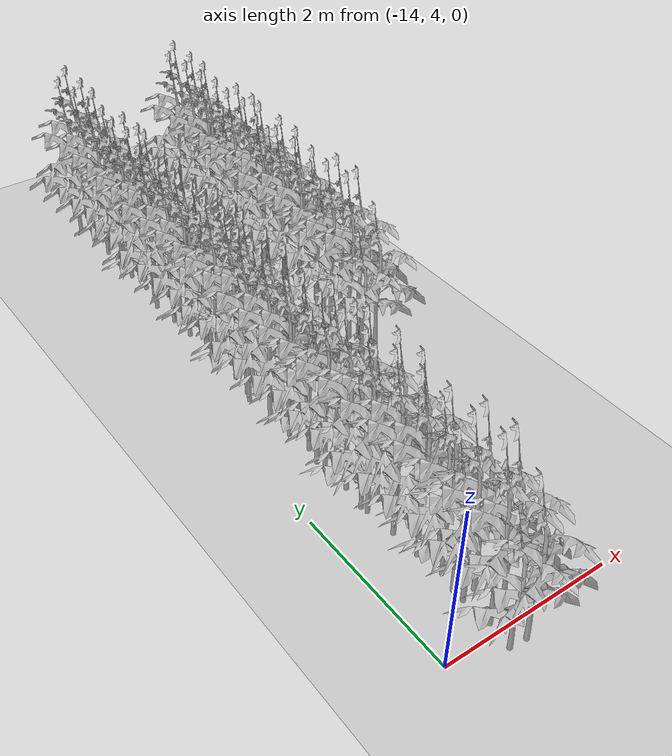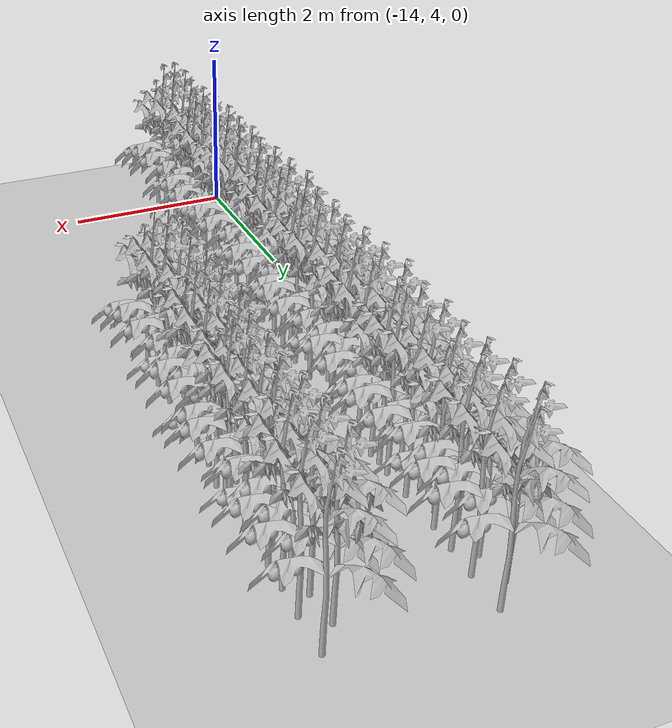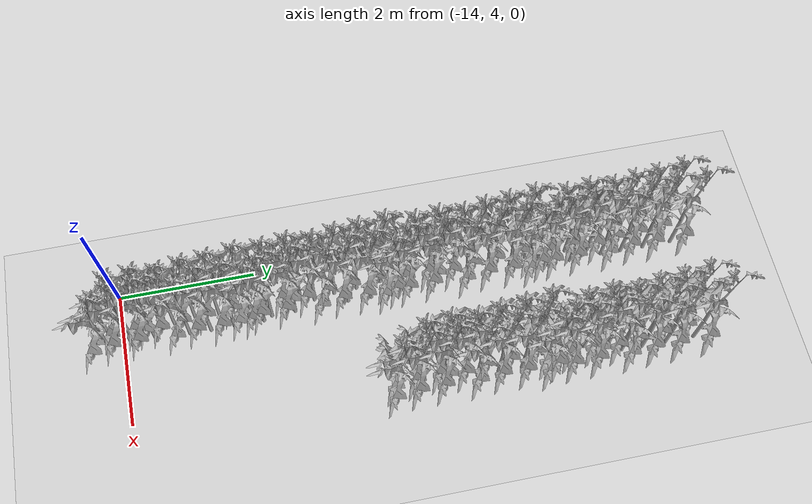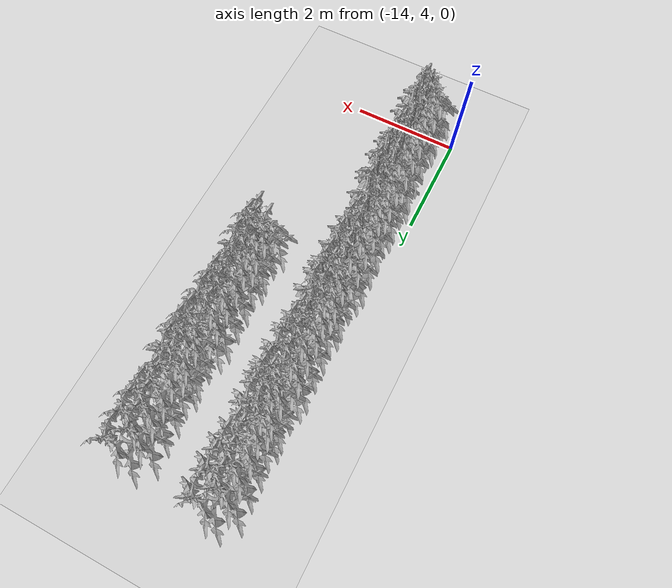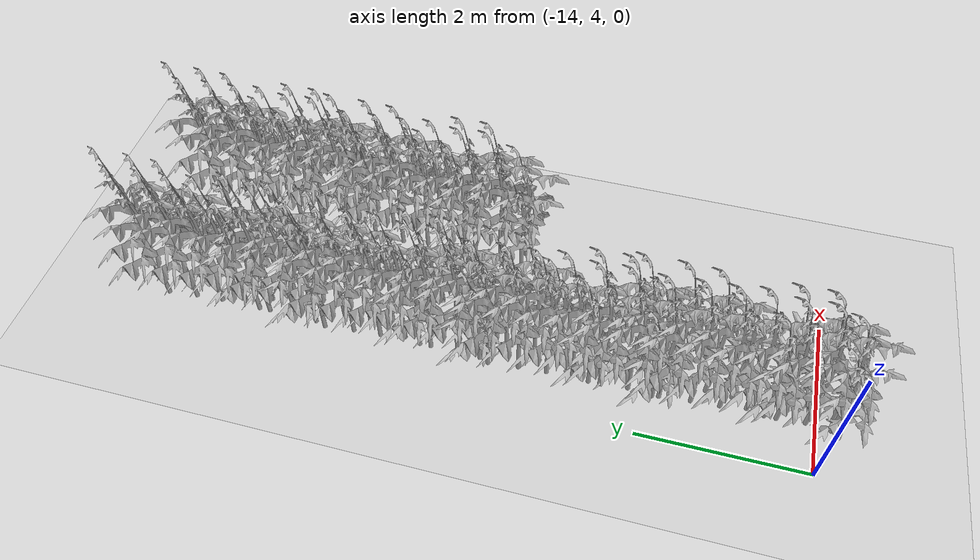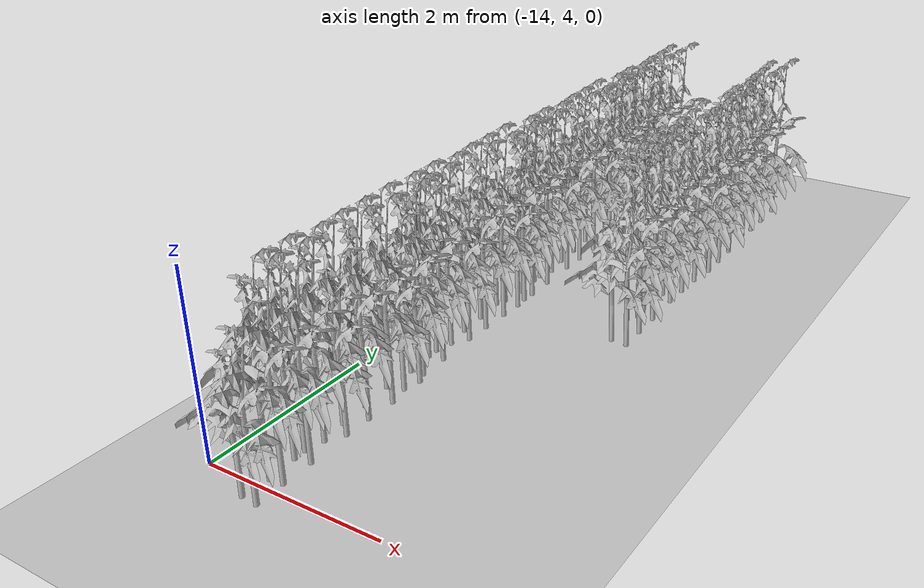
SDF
<sdf version="1.6">
 <world name="default">
  <model name="ground_plane">
   <static>1</static>
   <link name="link">
    <collision name="collision">
     <geometry><plane><normal>0 0 1</normal><size>100 100</size></plane></geometry>
     <surface>
      <contact><collide_bitmask>65535</collide_bitmask></contact>
      <friction><ode><mu>100</mu><mu2>50</mu2></ode></friction>
     </surface>
    </collision>
    <visual name="visual">
     <cast_shadows>0</cast_shadows>
     <geometry><plane><normal>0 0 1</normal><size>100 100</size></plane></geometry>
     <material>
      <script><uri>file://media/materials/scripts/gazebo.material</uri><name>Gazebo/Grey</name></script>
     </material>
    </visual>
   </link>
  </model>
  <model name="Middle_Plant_35">
   <model name="tomato_plant_big">
    <static>1</static>
    <link name="link">
     <collision name="collision">
      <geometry>
       <mesh><scale>5e-06 5e-06 6e-06</scale><uri>model://tomato_plant_big/meshes/tomato-plant.dae</uri></mesh>
      </geometry>
     </collision>
     <visual name="visual">
      <geometry>
       <mesh><scale>5e-06 5e-06 7e-06</scale><uri>model://tomato_plant_big/meshes/tomato-plant.dae</uri></mesh>
      </geometry>
     </visual>
    </link>
    <pose>0.085326 1.23023 0 0 -0 0</pose>
   </model>
   <model name="tomato_plant_big_0">
    <static>1</static>
    <link name="link">
     <collision name="collision">
      <geometry>
       <mesh><scale>5e-06 5e-06 6e-06</scale><uri>model://tomato_plant_big/meshes/tomato-plant.dae</uri></mesh>
      </geometry>
     </collision>
     <visual name="visual">
      <geometry>
       <mesh><scale>5e-06 5e-06 7e-06</scale><uri>model://tomato_plant_big/meshes/tomato-plant.dae</uri></mesh>
      </geometry>
     </visual>
    </link>
    <pose>-0.133881 0.970183 0 0 -0 0</pose>
   </model>
   <model name="tomato_plant_big_1">
    <static>1</static>
    <link name="link">
     <collision name="collision">
      <geometry>
       <mesh><scale>5e-06 5e-06 6e-06</scale><uri>model://tomato_plant_big/meshes/tomato-plant.dae</uri></mesh>
      </geometry>
     </collision>
     <visual name="visual">
      <geometry>
       <mesh><scale>5e-06 5e-06 7e-06</scale><uri>model://tomato_plant_big/meshes/tomato-plant.dae</uri></mesh>
      </geometry>
     </visual>
    </link>
    <pose>0.091162 0.792381 0 0 -0 0</pose>
   </model>
   <model name="tomato_plant_big_2">
    <static>1</static>
    <link name="link">
     <collision name="collision">
      <geometry>
       <mesh><scale>5e-06 5e-06 6e-06</scale><uri>model://tomato_plant_big/meshes/tomato-plant.dae</uri></mesh>
      </geometry>
     </collision>
     <visual name="visual">
      <geometry>
       <mesh><scale>5e-06 5e-06 7e-06</scale><uri>model://tomato_plant_big/meshes/tomato-plant.dae</uri></mesh>
      </geometry>
     </visual>
    </link>
    <pose>-0.099228 0.602587 0 0 -0 0</pose>
   </model>
   <model name="tomato_plant_big_3">
    <static>1</static>
    <link name="link">
     <collision name="collision">
      <geometry>
       <mesh><scale>5e-06 5e-06 6e-06</scale><uri>model://tomato_plant_big/meshes/tomato-plant.dae</uri></mesh>
      </geometry>
     </collision>
     <visual name="visual">
      <geometry>
       <mesh><scale>5e-06 5e-06 7e-06</scale><uri>model://tomato_plant_big/meshes/tomato-plant.dae</uri></mesh>
      </geometry>
     </visual>
    </link>
    <pose>0.083199 0.447645 0 0 -0 0</pose>
   </model>
   <model name="tomato_plant_big_4">
    <static>1</static>
    <link name="link">
     <collision name="collision">
      <geometry>
       <mesh><scale>5e-06 5e-06 6e-06</scale><uri>model://tomato_plant_big/meshes/tomato-plant.dae</uri></mesh>
      </geometry>
     </collision>
     <visual name="visual">
      <geometry>
       <mesh><scale>5e-06 5e-06 7e-06</scale><uri>model://tomato_plant_big/meshes/tomato-plant.dae</uri></mesh>
      </geometry>
     </visual>
    </link>
    <pose>-0.079499 0.263486 0 0 -0 0</pose>
   </model>
   <model name="tomato_plant_big_5">
    <static>1</static>
    <link name="link">
     <collision name="collision">
      <geometry>
       <mesh><scale>5e-06 5e-06 6e-06</scale><uri>model://tomato_plant_big/meshes/tomato-plant.dae</uri></mesh>
      </geometry>
     </collision>
     <visual name="visual">
      <geometry>
       <mesh><scale>5e-06 5e-06 7e-06</scale><uri>model://tomato_plant_big/meshes/tomato-plant.dae</uri></mesh>
      </geometry>
     </visual>
    </link>
    <pose>-0.033274 -0.040578 0 0 -0 0</pose>
   </model>
   <model name="tomato_plant_big_6">
    <static>1</static>
    <link name="link">
     <collision name="collision">
      <geometry>
       <mesh><scale>5e-06 5e-06 6e-06</scale><uri>model://tomato_plant_big/meshes/tomato-plant.dae</uri></mesh>
      </geometry>
     </collision>
     <visual name="visual">
      <geometry>
       <mesh><scale>5e-06 5e-06 7e-06</scale><uri>model://tomato_plant_big/meshes/tomato-plant.dae</uri></mesh>
      </geometry>
     </visual>
    </link>
    <pose>-0.07669 -0.382406 0 0 -0 0</pose>
   </model>
   <model name="tomato_plant_big_7">
    <static>1</static>
    <link name="link">
     <collision name="collision">
      <geometry>
       <mesh><scale>5e-06 5e-06 6e-06</scale><uri>model://tomato_plant_big/meshes/tomato-plant.dae</uri></mesh>
      </geometry>
     </collision>
     <visual name="visual">
      <geometry>
       <mesh><scale>5e-06 5e-06 7e-06</scale><uri>model://tomato_plant_big/meshes/tomato-plant.dae</uri></mesh>
      </geometry>
     </visual>
    </link>
    <pose>0.092388 -0.348189 0 0 -0 0</pose>
   </model>
   <model name="tomato_plant_big_8">
    <static>1</static>
    <link name="link">
     <collision name="collision">
      <geometry>
       <mesh><scale>5e-06 5e-06 6e-06</scale><uri>model://tomato_plant_big/meshes/tomato-plant.dae</uri></mesh>
      </geometry>
     </collision>
     <visual name="visual">
      <geometry>
       <mesh><scale>5e-06 5e-06 7e-06</scale><uri>model://tomato_plant_big/meshes/tomato-plant.dae</uri></mesh>
      </geometry>
     </visual>
    </link>
    <pose>0.099522 -0.697525 0 0 -0 0</pose>
   </model>
   <model name="tomato_plant_big_9">
    <static>1</static>
    <link name="link">
     <collision name="collision">
      <geometry>
       <mesh><scale>5e-06 5e-06 6e-06</scale><uri>model://tomato_plant_big/meshes/tomato-plant.dae</uri></mesh>
      </geometry>
     </collision>
     <visual name="visual">
      <geometry>
       <mesh><scale>5e-06 5e-06 7e-06</scale><uri>model://tomato_plant_big/meshes/tomato-plant.dae</uri></mesh>
      </geometry>
     </visual>
    </link>
    <pose>-0.050449 -0.712772 0 0 -0 0</pose>
   </model>
   <model name="tomato_plant_medium">
    <static>1</static>
    <link name="link">
     <collision name="collision">
      <geometry>
       <mesh><scale>5e-06 5e-06 6e-06</scale><uri>model://tomato_plant_medium/meshes/tomato-plant.dae</uri></mesh>
      </geometry>
     </collision>
     <visual name="visual">
      <geometry>
       <mesh><scale>5e-06 5e-06 6e-06</scale><uri>model://tomato_plant_medium/meshes/tomato-plant.dae</uri></mesh>
      </geometry>
     </visual>
    </link>
    <pose>0.078434 0.139842 0 0 -0 0</pose>
   </model>
   <model name="tomato_plant_medium_0">
    <static>1</static>
    <link name="link">
     <collision name="collision">
      <geometry>
       <mesh><scale>5e-06 5e-06 6e-06</scale><uri>model://tomato_plant_medium/meshes/tomato-plant.dae</uri></mesh>
      </geometry>
     </collision>
     <visual name="visual">
      <geometry>
       <mesh><scale>5e-06 5e-06 6e-06</scale><uri>model://tomato_plant_medium/meshes/tomato-plant.dae</uri></mesh>
      </geometry>
     </visual>
    </link>
    <pose>-0.079755 -0.244483 0 0 -0 0</pose>
   </model>
   <model name="tomato_plant_medium_1">
    <static>1</static>
    <link name="link">
     <collision name="collision">
      <geometry>
       <mesh><scale>5e-06 5e-06 6e-06</scale><uri>model://tomato_plant_medium/meshes/tomato-plant.dae</uri></mesh>
      </geometry>
     </collision>
     <visual name="visual">
      <geometry>
       <mesh><scale>5e-06 5e-06 6e-06</scale><uri>model://tomato_plant_medium/meshes/tomato-plant.dae</uri></mesh>
      </geometry>
     </visual>
    </link>
    <pose>0.106744 -1.01815 0 0 -0 0</pose>
   </model>
   <model name="tomato_plant_small">
    <static>1</static>
    <link name="link">
     <collision name="collision">
      <geometry>
       <mesh><scale>5e-06 5e-06 5e-06</scale><uri>model://tomato_plant_small/meshes/tomato-plant.dae</uri></mesh>
      </geometry>
     </collision>
     <visual name="visual">
      <geometry>
       <mesh><scale>5e-06 5e-06 5e-06</scale><uri>model://tomato_plant_small/meshes/tomato-plant.dae</uri></mesh>
      </geometry>
     </visual>
    </link>
    <pose>-0.083979 -1.00222 0 0 -0 0</pose>
   </model>
   <static>0</static>
   <pose>-13.303 4.80498 0 0 -0 0</pose>
  </model>
  <model name="Middle_Plant_39">
   <model name="tomato_plant_big">
    <static>1</static>
    <link name="link">
     <collision name="collision">
      <geometry>
       <mesh><scale>5e-06 5e-06 6e-06</scale><uri>model://tomato_plant_big/meshes/tomato-plant.dae</uri></mesh>
      </geometry>
     </collision>
     <visual name="visual">
      <geometry>
       <mesh><scale>5e-06 5e-06 7e-06</scale><uri>model://tomato_plant_big/meshes/tomato-plant.dae</uri></mesh>
      </geometry>
     </visual>
    </link>
    <pose>0.085326 1.23023 0 0 -0 0</pose>
   </model>
   <model name="tomato_plant_big_0">
    <static>1</static>
    <link name="link">
     <collision name="collision">
      <geometry>
       <mesh><scale>5e-06 5e-06 6e-06</scale><uri>model://tomato_plant_big/meshes/tomato-plant.dae</uri></mesh>
      </geometry>
     </collision>
     <visual name="visual">
      <geometry>
       <mesh><scale>5e-06 5e-06 7e-06</scale><uri>model://tomato_plant_big/meshes/tomato-plant.dae</uri></mesh>
      </geometry>
     </visual>
    </link>
    <pose>-0.133881 0.970183 0 0 -0 0</pose>
   </model>
   <model name="tomato_plant_big_1">
    <static>1</static>
    <link name="link">
     <collision name="collision">
      <geometry>
       <mesh><scale>5e-06 5e-06 6e-06</scale><uri>model://tomato_plant_big/meshes/tomato-plant.dae</uri></mesh>
      </geometry>
     </collision>
     <visual name="visual">
      <geometry>
       <mesh><scale>5e-06 5e-06 7e-06</scale><uri>model://tomato_plant_big/meshes/tomato-plant.dae</uri></mesh>
      </geometry>
     </visual>
    </link>
    <pose>0.091162 0.792381 0 0 -0 0</pose>
   </model>
   <model name="tomato_plant_big_2">
    <static>1</static>
    <link name="link">
     <collision name="collision">
      <geometry>
       <mesh><scale>5e-06 5e-06 6e-06</scale><uri>model://tomato_plant_big/meshes/tomato-plant.dae</uri></mesh>
      </geometry>
     </collision>
     <visual name="visual">
      <geometry>
       <mesh><scale>5e-06 5e-06 7e-06</scale><uri>model://tomato_plant_big/meshes/tomato-plant.dae</uri></mesh>
      </geometry>
     </visual>
    </link>
    <pose>-0.099228 0.602587 0 0 -0 0</pose>
   </model>
   <model name="tomato_plant_big_3">
    <static>1</static>
    <link name="link">
     <collision name="collision">
      <geometry>
       <mesh><scale>5e-06 5e-06 6e-06</scale><uri>model://tomato_plant_big/meshes/tomato-plant.dae</uri></mesh>
      </geometry>
     </collision>
     <visual name="visual">
      <geometry>
       <mesh><scale>5e-06 5e-06 7e-06</scale><uri>model://tomato_plant_big/meshes/tomato-plant.dae</uri></mesh>
      </geometry>
     </visual>
    </link>
    <pose>0.083199 0.447645 0 0 -0 0</pose>
   </model>
   <model name="tomato_plant_big_4">
    <static>1</static>
    <link name="link">
     <collision name="collision">
      <geometry>
       <mesh><scale>5e-06 5e-06 6e-06</scale><uri>model://tomato_plant_big/meshes/tomato-plant.dae</uri></mesh>
      </geometry>
     </collision>
     <visual name="visual">
      <geometry>
       <mesh><scale>5e-06 5e-06 7e-06</scale><uri>model://tomato_plant_big/meshes/tomato-plant.dae</uri></mesh>
      </geometry>
     </visual>
    </link>
    <pose>-0.079499 0.263486 0 0 -0 0</pose>
   </model>
   <model name="tomato_plant_big_5">
    <static>1</static>
    <link name="link">
     <collision name="collision">
      <geometry>
       <mesh><scale>5e-06 5e-06 6e-06</scale><uri>model://tomato_plant_big/meshes/tomato-plant.dae</uri></mesh>
      </geometry>
     </collision>
     <visual name="visual">
      <geometry>
       <mesh><scale>5e-06 5e-06 7e-06</scale><uri>model://tomato_plant_big/meshes/tomato-plant.dae</uri></mesh>
      </geometry>
     </visual>
    </link>
    <pose>-0.033274 -0.040578 0 0 -0 0</pose>
   </model>
   <model name="tomato_plant_big_6">
    <static>1</static>
    <link name="link">
     <collision name="collision">
      <geometry>
       <mesh><scale>5e-06 5e-06 6e-06</scale><uri>model://tomato_plant_big/meshes/tomato-plant.dae</uri></mesh>
      </geometry>
     </collision>
     <visual name="visual">
      <geometry>
       <mesh><scale>5e-06 5e-06 7e-06</scale><uri>model://tomato_plant_big/meshes/tomato-plant.dae</uri></mesh>
      </geometry>
     </visual>
    </link>
    <pose>-0.07669 -0.382406 0 0 -0 0</pose>
   </model>
   <model name="tomato_plant_big_7">
    <static>1</static>
    <link name="link">
     <collision name="collision">
      <geometry>
       <mesh><scale>5e-06 5e-06 6e-06</scale><uri>model://tomato_plant_big/meshes/tomato-plant.dae</uri></mesh>
      </geometry>
     </collision>
     <visual name="visual">
      <geometry>
       <mesh><scale>5e-06 5e-06 7e-06</scale><uri>model://tomato_plant_big/meshes/tomato-plant.dae</uri></mesh>
      </geometry>
     </visual>
    </link>
    <pose>0.092388 -0.348189 0 0 -0 0</pose>
   </model>
   <model name="tomato_plant_big_8">
    <static>1</static>
    <link name="link">
     <collision name="collision">
      <geometry>
       <mesh><scale>5e-06 5e-06 6e-06</scale><uri>model://tomato_plant_big/meshes/tomato-plant.dae</uri></mesh>
      </geometry>
     </collision>
     <visual name="visual">
      <geometry>
       <mesh><scale>5e-06 5e-06 7e-06</scale><uri>model://tomato_plant_big/meshes/tomato-plant.dae</uri></mesh>
      </geometry>
     </visual>
    </link>
    <pose>0.099522 -0.697525 0 0 -0 0</pose>
   </model>
   <model name="tomato_plant_big_9">
    <static>1</static>
    <link name="link">
     <collision name="collision">
      <geometry>
       <mesh><scale>5e-06 5e-06 6e-06</scale><uri>model://tomato_plant_big/meshes/tomato-plant.dae</uri></mesh>
      </geometry>
     </collision>
     <visual name="visual">
      <geometry>
       <mesh><scale>5e-06 5e-06 7e-06</scale><uri>model://tomato_plant_big/meshes/tomato-plant.dae</uri></mesh>
      </geometry>
     </visual>
    </link>
    <pose>-0.050449 -0.712772 0 0 -0 0</pose>
   </model>
   <model name="tomato_plant_medium">
    <static>1</static>
    <link name="link">
     <collision name="collision">
      <geometry>
       <mesh><scale>5e-06 5e-06 6e-06</scale><uri>model://tomato_plant_medium/meshes/tomato-plant.dae</uri></mesh>
      </geometry>
     </collision>
     <visual name="visual">
      <geometry>
       <mesh><scale>5e-06 5e-06 6e-06</scale><uri>model://tomato_plant_medium/meshes/tomato-plant.dae</uri></mesh>
      </geometry>
     </visual>
    </link>
    <pose>0.078434 0.139842 0 0 -0 0</pose>
   </model>
   <model name="tomato_plant_medium_0">
    <static>1</static>
    <link name="link">
     <collision name="collision">
      <geometry>
       <mesh><scale>5e-06 5e-06 6e-06</scale><uri>model://tomato_plant_medium/meshes/tomato-plant.dae</uri></mesh>
      </geometry>
     </collision>
     <visual name="visual">
      <geometry>
       <mesh><scale>5e-06 5e-06 6e-06</scale><uri>model://tomato_plant_medium/meshes/tomato-plant.dae</uri></mesh>
      </geometry>
     </visual>
    </link>
    <pose>-0.079755 -0.244483 0 0 -0 0</pose>
   </model>
   <model name="tomato_plant_medium_1">
    <static>1</static>
    <link name="link">
     <collision name="collision">
      <geometry>
       <mesh><scale>5e-06 5e-06 6e-06</scale><uri>model://tomato_plant_medium/meshes/tomato-plant.dae</uri></mesh>
      </geometry>
     </collision>
     <visual name="visual">
      <geometry>
       <mesh><scale>5e-06 5e-06 6e-06</scale><uri>model://tomato_plant_medium/meshes/tomato-plant.dae</uri></mesh>
      </geometry>
     </visual>
    </link>
    <pose>0.106744 -1.01815 0 0 -0 0</pose>
   </model>
   <model name="tomato_plant_small">
    <static>1</static>
    <link name="link">
     <collision name="collision">
      <geometry>
       <mesh><scale>5e-06 5e-06 5e-06</scale><uri>model://tomato_plant_small/meshes/tomato-plant.dae</uri></mesh>
      </geometry>
     </collision>
     <visual name="visual">
      <geometry>
       <mesh><scale>5e-06 5e-06 5e-06</scale><uri>model://tomato_plant_small/meshes/tomato-plant.dae</uri></mesh>
      </geometry>
     </visual>
    </link>
    <pose>-0.083979 -1.00222 0 0 -0 0</pose>
   </model>
   <static>0</static>
   <pose>-13.3691 6.85639 0 0 -0 0</pose>
  </model>
  <model name="Middle_Plant_40">
   <model name="tomato_plant_big">
    <static>1</static>
    <link name="link">
     <collision name="collision">
      <geometry>
       <mesh><scale>5e-06 5e-06 6e-06</scale><uri>model://tomato_plant_big/meshes/tomato-plant.dae</uri></mesh>
      </geometry>
     </collision>
     <visual name="visual">
      <geometry>
       <mesh><scale>5e-06 5e-06 7e-06</scale><uri>model://tomato_plant_big/meshes/tomato-plant.dae</uri></mesh>
      </geometry>
     </visual>
    </link>
    <pose>0.085326 1.23023 0 0 -0 0</pose>
   </model>
   <model name="tomato_plant_big_0">
    <static>1</static>
    <link name="link">
     <collision name="collision">
      <geometry>
       <mesh><scale>5e-06 5e-06 6e-06</scale><uri>model://tomato_plant_big/meshes/tomato-plant.dae</uri></mesh>
      </geometry>
     </collision>
     <visual name="visual">
      <geometry>
       <mesh><scale>5e-06 5e-06 7e-06</scale><uri>model://tomato_plant_big/meshes/tomato-plant.dae</uri></mesh>
      </geometry>
     </visual>
    </link>
    <pose>-0.133881 0.970183 0 0 -0 0</pose>
   </model>
   <model name="tomato_plant_big_1">
    <static>1</static>
    <link name="link">
     <collision name="collision">
      <geometry>
       <mesh><scale>5e-06 5e-06 6e-06</scale><uri>model://tomato_plant_big/meshes/tomato-plant.dae</uri></mesh>
      </geometry>
     </collision>
     <visual name="visual">
      <geometry>
       <mesh><scale>5e-06 5e-06 7e-06</scale><uri>model://tomato_plant_big/meshes/tomato-plant.dae</uri></mesh>
      </geometry>
     </visual>
    </link>
    <pose>0.091162 0.792381 0 0 -0 0</pose>
   </model>
   <model name="tomato_plant_big_2">
    <static>1</static>
    <link name="link">
     <collision name="collision">
      <geometry>
       <mesh><scale>5e-06 5e-06 6e-06</scale><uri>model://tomato_plant_big/meshes/tomato-plant.dae</uri></mesh>
      </geometry>
     </collision>
     <visual name="visual">
      <geometry>
       <mesh><scale>5e-06 5e-06 7e-06</scale><uri>model://tomato_plant_big/meshes/tomato-plant.dae</uri></mesh>
      </geometry>
     </visual>
    </link>
    <pose>-0.099228 0.602587 0 0 -0 0</pose>
   </model>
   <model name="tomato_plant_big_3">
    <static>1</static>
    <link name="link">
     <collision name="collision">
      <geometry>
       <mesh><scale>5e-06 5e-06 6e-06</scale><uri>model://tomato_plant_big/meshes/tomato-plant.dae</uri></mesh>
      </geometry>
     </collision>
     <visual name="visual">
      <geometry>
       <mesh><scale>5e-06 5e-06 7e-06</scale><uri>model://tomato_plant_big/meshes/tomato-plant.dae</uri></mesh>
      </geometry>
     </visual>
    </link>
    <pose>0.083199 0.447645 0 0 -0 0</pose>
   </model>
   <model name="tomato_plant_big_4">
    <static>1</static>
    <link name="link">
     <collision name="collision">
      <geometry>
       <mesh><scale>5e-06 5e-06 6e-06</scale><uri>model://tomato_plant_big/meshes/tomato-plant.dae</uri></mesh>
      </geometry>
     </collision>
     <visual name="visual">
      <geometry>
       <mesh><scale>5e-06 5e-06 7e-06</scale><uri>model://tomato_plant_big/meshes/tomato-plant.dae</uri></mesh>
      </geometry>
     </visual>
    </link>
    <pose>-0.079499 0.263486 0 0 -0 0</pose>
   </model>
   <model name="tomato_plant_big_5">
    <static>1</static>
    <link name="link">
     <collision name="collision">
      <geometry>
       <mesh><scale>5e-06 5e-06 6e-06</scale><uri>model://tomato_plant_big/meshes/tomato-plant.dae</uri></mesh>
      </geometry>
     </collision>
     <visual name="visual">
      <geometry>
       <mesh><scale>5e-06 5e-06 7e-06</scale><uri>model://tomato_plant_big/meshes/tomato-plant.dae</uri></mesh>
      </geometry>
     </visual>
    </link>
    <pose>-0.033274 -0.040578 0 0 -0 0</pose>
   </model>
   <model name="tomato_plant_big_6">
    <static>1</static>
    <link name="link">
     <collision name="collision">
      <geometry>
       <mesh><scale>5e-06 5e-06 6e-06</scale><uri>model://tomato_plant_big/meshes/tomato-plant.dae</uri></mesh>
      </geometry>
     </collision>
     <visual name="visual">
      <geometry>
       <mesh><scale>5e-06 5e-06 7e-06</scale><uri>model://tomato_plant_big/meshes/tomato-plant.dae</uri></mesh>
      </geometry>
     </visual>
    </link>
    <pose>-0.07669 -0.382406 0 0 -0 0</pose>
   </model>
   <model name="tomato_plant_big_7">
    <static>1</static>
    <link name="link">
     <collision name="collision">
      <geometry>
       <mesh><scale>5e-06 5e-06 6e-06</scale><uri>model://tomato_plant_big/meshes/tomato-plant.dae</uri></mesh>
      </geometry>
     </collision>
     <visual name="visual">
      <geometry>
       <mesh><scale>5e-06 5e-06 7e-06</scale><uri>model://tomato_plant_big/meshes/tomato-plant.dae</uri></mesh>
      </geometry>
     </visual>
    </link>
    <pose>0.092388 -0.348189 0 0 -0 0</pose>
   </model>
   <model name="tomato_plant_big_8">
    <static>1</static>
    <link name="link">
     <collision name="collision">
      <geometry>
       <mesh><scale>5e-06 5e-06 6e-06</scale><uri>model://tomato_plant_big/meshes/tomato-plant.dae</uri></mesh>
      </geometry>
     </collision>
     <visual name="visual">
      <geometry>
       <mesh><scale>5e-06 5e-06 7e-06</scale><uri>model://tomato_plant_big/meshes/tomato-plant.dae</uri></mesh>
      </geometry>
     </visual>
    </link>
    <pose>0.099522 -0.697525 0 0 -0 0</pose>
   </model>
   <model name="tomato_plant_big_9">
    <static>1</static>
    <link name="link">
     <collision name="collision">
      <geometry>
       <mesh><scale>5e-06 5e-06 6e-06</scale><uri>model://tomato_plant_big/meshes/tomato-plant.dae</uri></mesh>
      </geometry>
     </collision>
     <visual name="visual">
      <geometry>
       <mesh><scale>5e-06 5e-06 7e-06</scale><uri>model://tomato_plant_big/meshes/tomato-plant.dae</uri></mesh>
      </geometry>
     </visual>
    </link>
    <pose>-0.050449 -0.712772 0 0 -0 0</pose>
   </model>
   <model name="tomato_plant_medium">
    <static>1</static>
    <link name="link">
     <collision name="collision">
      <geometry>
       <mesh><scale>5e-06 5e-06 6e-06</scale><uri>model://tomato_plant_medium/meshes/tomato-plant.dae</uri></mesh>
      </geometry>
     </collision>
     <visual name="visual">
      <geometry>
       <mesh><scale>5e-06 5e-06 6e-06</scale><uri>model://tomato_plant_medium/meshes/tomato-plant.dae</uri></mesh>
      </geometry>
     </visual>
    </link>
    <pose>0.078434 0.139842 0 0 -0 0</pose>
   </model>
   <model name="tomato_plant_medium_0">
    <static>1</static>
    <link name="link">
     <collision name="collision">
      <geometry>
       <mesh><scale>5e-06 5e-06 6e-06</scale><uri>model://tomato_plant_medium/meshes/tomato-plant.dae</uri></mesh>
      </geometry>
     </collision>
     <visual name="visual">
      <geometry>
       <mesh><scale>5e-06 5e-06 6e-06</scale><uri>model://tomato_plant_medium/meshes/tomato-plant.dae</uri></mesh>
      </geometry>
     </visual>
    </link>
    <pose>-0.079755 -0.244483 0 0 -0 0</pose>
   </model>
   <model name="tomato_plant_medium_1">
    <static>1</static>
    <link name="link">
     <collision name="collision">
      <geometry>
       <mesh><scale>5e-06 5e-06 6e-06</scale><uri>model://tomato_plant_medium/meshes/tomato-plant.dae</uri></mesh>
      </geometry>
     </collision>
     <visual name="visual">
      <geometry>
       <mesh><scale>5e-06 5e-06 6e-06</scale><uri>model://tomato_plant_medium/meshes/tomato-plant.dae</uri></mesh>
      </geometry>
     </visual>
    </link>
    <pose>0.106744 -1.01815 0 0 -0 0</pose>
   </model>
   <model name="tomato_plant_small">
    <static>1</static>
    <link name="link">
     <collision name="collision">
      <geometry>
       <mesh><scale>5e-06 5e-06 5e-06</scale><uri>model://tomato_plant_small/meshes/tomato-plant.dae</uri></mesh>
      </geometry>
     </collision>
     <visual name="visual">
      <geometry>
       <mesh><scale>5e-06 5e-06 5e-06</scale><uri>model://tomato_plant_small/meshes/tomato-plant.dae</uri></mesh>
      </geometry>
     </visual>
    </link>
    <pose>-0.083979 -1.00222 0 0 -0 0</pose>
   </model>
   <static>0</static>
   <pose>-13.373 8.94195 0 0 -0 0</pose>
  </model>
  <model name="Middle_Plant_41">
   <model name="tomato_plant_big">
    <static>1</static>
    <link name="link">
     <collision name="collision">
      <geometry>
       <mesh><scale>5e-06 5e-06 6e-06</scale><uri>model://tomato_plant_big/meshes/tomato-plant.dae</uri></mesh>
      </geometry>
     </collision>
     <visual name="visual">
      <geometry>
       <mesh><scale>5e-06 5e-06 7e-06</scale><uri>model://tomato_plant_big/meshes/tomato-plant.dae</uri></mesh>
      </geometry>
     </visual>
    </link>
    <pose>0.085326 1.23023 0 0 -0 0</pose>
   </model>
   <model name="tomato_plant_big_0">
    <static>1</static>
    <link name="link">
     <collision name="collision">
      <geometry>
       <mesh><scale>5e-06 5e-06 6e-06</scale><uri>model://tomato_plant_big/meshes/tomato-plant.dae</uri></mesh>
      </geometry>
     </collision>
     <visual name="visual">
      <geometry>
       <mesh><scale>5e-06 5e-06 7e-06</scale><uri>model://tomato_plant_big/meshes/tomato-plant.dae</uri></mesh>
      </geometry>
     </visual>
    </link>
    <pose>-0.133881 0.970183 0 0 -0 0</pose>
   </model>
   <model name="tomato_plant_big_1">
    <static>1</static>
    <link name="link">
     <collision name="collision">
      <geometry>
       <mesh><scale>5e-06 5e-06 6e-06</scale><uri>model://tomato_plant_big/meshes/tomato-plant.dae</uri></mesh>
      </geometry>
     </collision>
     <visual name="visual">
      <geometry>
       <mesh><scale>5e-06 5e-06 7e-06</scale><uri>model://tomato_plant_big/meshes/tomato-plant.dae</uri></mesh>
      </geometry>
     </visual>
    </link>
    <pose>0.091162 0.792381 0 0 -0 0</pose>
   </model>
   <model name="tomato_plant_big_2">
    <static>1</static>
    <link name="link">
     <collision name="collision">
      <geometry>
       <mesh><scale>5e-06 5e-06 6e-06</scale><uri>model://tomato_plant_big/meshes/tomato-plant.dae</uri></mesh>
      </geometry>
     </collision>
     <visual name="visual">
      <geometry>
       <mesh><scale>5e-06 5e-06 7e-06</scale><uri>model://tomato_plant_big/meshes/tomato-plant.dae</uri></mesh>
      </geometry>
     </visual>
    </link>
    <pose>-0.099228 0.602587 0 0 -0 0</pose>
   </model>
   <model name="tomato_plant_big_3">
    <static>1</static>
    <link name="link">
     <collision name="collision">
      <geometry>
       <mesh><scale>5e-06 5e-06 6e-06</scale><uri>model://tomato_plant_big/meshes/tomato-plant.dae</uri></mesh>
      </geometry>
     </collision>
     <visual name="visual">
      <geometry>
       <mesh><scale>5e-06 5e-06 7e-06</scale><uri>model://tomato_plant_big/meshes/tomato-plant.dae</uri></mesh>
      </geometry>
     </visual>
    </link>
    <pose>0.083199 0.447645 0 0 -0 0</pose>
   </model>
   <model name="tomato_plant_big_4">
    <static>1</static>
    <link name="link">
     <collision name="collision">
      <geometry>
       <mesh><scale>5e-06 5e-06 6e-06</scale><uri>model://tomato_plant_big/meshes/tomato-plant.dae</uri></mesh>
      </geometry>
     </collision>
     <visual name="visual">
      <geometry>
       <mesh><scale>5e-06 5e-06 7e-06</scale><uri>model://tomato_plant_big/meshes/tomato-plant.dae</uri></mesh>
      </geometry>
     </visual>
    </link>
    <pose>-0.079499 0.263486 0 0 -0 0</pose>
   </model>
   <model name="tomato_plant_big_5">
    <static>1</static>
    <link name="link">
     <collision name="collision">
      <geometry>
       <mesh><scale>5e-06 5e-06 6e-06</scale><uri>model://tomato_plant_big/meshes/tomato-plant.dae</uri></mesh>
      </geometry>
     </collision>
     <visual name="visual">
      <geometry>
       <mesh><scale>5e-06 5e-06 7e-06</scale><uri>model://tomato_plant_big/meshes/tomato-plant.dae</uri></mesh>
      </geometry>
     </visual>
    </link>
    <pose>-0.033274 -0.040578 0 0 -0 0</pose>
   </model>
   <model name="tomato_plant_big_6">
    <static>1</static>
    <link name="link">
     <collision name="collision">
      <geometry>
       <mesh><scale>5e-06 5e-06 6e-06</scale><uri>model://tomato_plant_big/meshes/tomato-plant.dae</uri></mesh>
      </geometry>
     </collision>
     <visual name="visual">
      <geometry>
       <mesh><scale>5e-06 5e-06 7e-06</scale><uri>model://tomato_plant_big/meshes/tomato-plant.dae</uri></mesh>
      </geometry>
     </visual>
    </link>
    <pose>-0.07669 -0.382406 0 0 -0 0</pose>
   </model>
   <model name="tomato_plant_big_7">
    <static>1</static>
    <link name="link">
     <collision name="collision">
      <geometry>
       <mesh><scale>5e-06 5e-06 6e-06</scale><uri>model://tomato_plant_big/meshes/tomato-plant.dae</uri></mesh>
      </geometry>
     </collision>
     <visual name="visual">
      <geometry>
       <mesh><scale>5e-06 5e-06 7e-06</scale><uri>model://tomato_plant_big/meshes/tomato-plant.dae</uri></mesh>
      </geometry>
     </visual>
    </link>
    <pose>0.092388 -0.348189 0 0 -0 0</pose>
   </model>
   <model name="tomato_plant_big_8">
    <static>1</static>
    <link name="link">
     <collision name="collision">
      <geometry>
       <mesh><scale>5e-06 5e-06 6e-06</scale><uri>model://tomato_plant_big/meshes/tomato-plant.dae</uri></mesh>
      </geometry>
     </collision>
     <visual name="visual">
      <geometry>
       <mesh><scale>5e-06 5e-06 7e-06</scale><uri>model://tomato_plant_big/meshes/tomato-plant.dae</uri></mesh>
      </geometry>
     </visual>
    </link>
    <pose>0.099522 -0.697525 0 0 -0 0</pose>
   </model>
   <model name="tomato_plant_big_9">
    <static>1</static>
    <link name="link">
     <collision name="collision">
      <geometry>
       <mesh><scale>5e-06 5e-06 6e-06</scale><uri>model://tomato_plant_big/meshes/tomato-plant.dae</uri></mesh>
      </geometry>
     </collision>
     <visual name="visual">
      <geometry>
       <mesh><scale>5e-06 5e-06 7e-06</scale><uri>model://tomato_plant_big/meshes/tomato-plant.dae</uri></mesh>
      </geometry>
     </visual>
    </link>
    <pose>-0.050449 -0.712772 0 0 -0 0</pose>
   </model>
   <model name="tomato_plant_medium">
    <static>1</static>
    <link name="link">
     <collision name="collision">
      <geometry>
       <mesh><scale>5e-06 5e-06 6e-06</scale><uri>model://tomato_plant_medium/meshes/tomato-plant.dae</uri></mesh>
      </geometry>
     </collision>
     <visual name="visual">
      <geometry>
       <mesh><scale>5e-06 5e-06 6e-06</scale><uri>model://tomato_plant_medium/meshes/tomato-plant.dae</uri></mesh>
      </geometry>
     </visual>
    </link>
    <pose>0.078434 0.139842 0 0 -0 0</pose>
   </model>
   <model name="tomato_plant_medium_0">
    <static>1</static>
    <link name="link">
     <collision name="collision">
      <geometry>
       <mesh><scale>5e-06 5e-06 6e-06</scale><uri>model://tomato_plant_medium/meshes/tomato-plant.dae</uri></mesh>
      </geometry>
     </collision>
     <visual name="visual">
      <geometry>
       <mesh><scale>5e-06 5e-06 6e-06</scale><uri>model://tomato_plant_medium/meshes/tomato-plant.dae</uri></mesh>
      </geometry>
     </visual>
    </link>
    <pose>-0.079755 -0.244483 0 0 -0 0</pose>
   </model>
   <model name="tomato_plant_medium_1">
    <static>1</static>
    <link name="link">
     <collision name="collision">
      <geometry>
       <mesh><scale>5e-06 5e-06 6e-06</scale><uri>model://tomato_plant_medium/meshes/tomato-plant.dae</uri></mesh>
      </geometry>
     </collision>
     <visual name="visual">
      <geometry>
       <mesh><scale>5e-06 5e-06 6e-06</scale><uri>model://tomato_plant_medium/meshes/tomato-plant.dae</uri></mesh>
      </geometry>
     </visual>
    </link>
    <pose>0.106744 -1.01815 0 0 -0 0</pose>
   </model>
   <model name="tomato_plant_small">
    <static>1</static>
    <link name="link">
     <collision name="collision">
      <geometry>
       <mesh><scale>5e-06 5e-06 5e-06</scale><uri>model://tomato_plant_small/meshes/tomato-plant.dae</uri></mesh>
      </geometry>
     </collision>
     <visual name="visual">
      <geometry>
       <mesh><scale>5e-06 5e-06 5e-06</scale><uri>model://tomato_plant_small/meshes/tomato-plant.dae</uri></mesh>
      </geometry>
     </visual>
    </link>
    <pose>-0.083979 -1.00222 0 0 -0 0</pose>
   </model>
   <static>0</static>
   <pose>-13.3791 11.0476 0 0 -0 0</pose>
  </model>
  <model name="Middle_Plant_50">
   <model name="tomato_plant_big">
    <static>1</static>
    <link name="link">
     <collision name="collision">
      <geometry>
       <mesh><scale>5e-06 5e-06 6e-06</scale><uri>model://tomato_plant_big/meshes/tomato-plant.dae</uri></mesh>
      </geometry>
     </collision>
     <visual name="visual">
      <geometry>
       <mesh><scale>5e-06 5e-06 7e-06</scale><uri>model://tomato_plant_big/meshes/tomato-plant.dae</uri></mesh>
      </geometry>
     </visual>
    </link>
    <pose>0.085326 1.23023 0 0 -0 0</pose>
   </model>
   <model name="tomato_plant_big_0">
    <static>1</static>
    <link name="link">
     <collision name="collision">
      <geometry>
       <mesh><scale>5e-06 5e-06 6e-06</scale><uri>model://tomato_plant_big/meshes/tomato-plant.dae</uri></mesh>
      </geometry>
     </collision>
     <visual name="visual">
      <geometry>
       <mesh><scale>5e-06 5e-06 7e-06</scale><uri>model://tomato_plant_big/meshes/tomato-plant.dae</uri></mesh>
      </geometry>
     </visual>
    </link>
    <pose>-0.133881 0.970183 0 0 -0 0</pose>
   </model>
   <model name="tomato_plant_big_1">
    <static>1</static>
    <link name="link">
     <collision name="collision">
      <geometry>
       <mesh><scale>5e-06 5e-06 6e-06</scale><uri>model://tomato_plant_big/meshes/tomato-plant.dae</uri></mesh>
      </geometry>
     </collision>
     <visual name="visual">
      <geometry>
       <mesh><scale>5e-06 5e-06 7e-06</scale><uri>model://tomato_plant_big/meshes/tomato-plant.dae</uri></mesh>
      </geometry>
     </visual>
    </link>
    <pose>0.091162 0.792381 0 0 -0 0</pose>
   </model>
   <model name="tomato_plant_big_2">
    <static>1</static>
    <link name="link">
     <collision name="collision">
      <geometry>
       <mesh><scale>5e-06 5e-06 6e-06</scale><uri>model://tomato_plant_big/meshes/tomato-plant.dae</uri></mesh>
      </geometry>
     </collision>
     <visual name="visual">
      <geometry>
       <mesh><scale>5e-06 5e-06 7e-06</scale><uri>model://tomato_plant_big/meshes/tomato-plant.dae</uri></mesh>
      </geometry>
     </visual>
    </link>
    <pose>-0.099228 0.602587 0 0 -0 0</pose>
   </model>
   <model name="tomato_plant_big_3">
    <static>1</static>
    <link name="link">
     <collision name="collision">
      <geometry>
       <mesh><scale>5e-06 5e-06 6e-06</scale><uri>model://tomato_plant_big/meshes/tomato-plant.dae</uri></mesh>
      </geometry>
     </collision>
     <visual name="visual">
      <geometry>
       <mesh><scale>5e-06 5e-06 7e-06</scale><uri>model://tomato_plant_big/meshes/tomato-plant.dae</uri></mesh>
      </geometry>
     </visual>
    </link>
    <pose>0.083199 0.447645 0 0 -0 0</pose>
   </model>
   <model name="tomato_plant_big_4">
    <static>1</static>
    <link name="link">
     <collision name="collision">
      <geometry>
       <mesh><scale>5e-06 5e-06 6e-06</scale><uri>model://tomato_plant_big/meshes/tomato-plant.dae</uri></mesh>
      </geometry>
     </collision>
     <visual name="visual">
      <geometry>
       <mesh><scale>5e-06 5e-06 7e-06</scale><uri>model://tomato_plant_big/meshes/tomato-plant.dae</uri></mesh>
      </geometry>
     </visual>
    </link>
    <pose>-0.079499 0.263486 0 0 -0 0</pose>
   </model>
   <model name="tomato_plant_big_5">
    <static>1</static>
    <link name="link">
     <collision name="collision">
      <geometry>
       <mesh><scale>5e-06 5e-06 6e-06</scale><uri>model://tomato_plant_big/meshes/tomato-plant.dae</uri></mesh>
      </geometry>
     </collision>
     <visual name="visual">
      <geometry>
       <mesh><scale>5e-06 5e-06 7e-06</scale><uri>model://tomato_plant_big/meshes/tomato-plant.dae</uri></mesh>
      </geometry>
     </visual>
    </link>
    <pose>-0.033274 -0.040578 0 0 -0 0</pose>
   </model>
   <model name="tomato_plant_big_6">
    <static>1</static>
    <link name="link">
     <collision name="collision">
      <geometry>
       <mesh><scale>5e-06 5e-06 6e-06</scale><uri>model://tomato_plant_big/meshes/tomato-plant.dae</uri></mesh>
      </geometry>
     </collision>
     <visual name="visual">
      <geometry>
       <mesh><scale>5e-06 5e-06 7e-06</scale><uri>model://tomato_plant_big/meshes/tomato-plant.dae</uri></mesh>
      </geometry>
     </visual>
    </link>
    <pose>-0.07669 -0.382406 0 0 -0 0</pose>
   </model>
   <model name="tomato_plant_big_7">
    <static>1</static>
    <link name="link">
     <collision name="collision">
      <geometry>
       <mesh><scale>5e-06 5e-06 6e-06</scale><uri>model://tomato_plant_big/meshes/tomato-plant.dae</uri></mesh>
      </geometry>
     </collision>
     <visual name="visual">
      <geometry>
       <mesh><scale>5e-06 5e-06 7e-06</scale><uri>model://tomato_plant_big/meshes/tomato-plant.dae</uri></mesh>
      </geometry>
     </visual>
    </link>
    <pose>0.092388 -0.348189 0 0 -0 0</pose>
   </model>
   <model name="tomato_plant_big_8">
    <static>1</static>
    <link name="link">
     <collision name="collision">
      <geometry>
       <mesh><scale>5e-06 5e-06 6e-06</scale><uri>model://tomato_plant_big/meshes/tomato-plant.dae</uri></mesh>
      </geometry>
     </collision>
     <visual name="visual">
      <geometry>
       <mesh><scale>5e-06 5e-06 7e-06</scale><uri>model://tomato_plant_big/meshes/tomato-plant.dae</uri></mesh>
      </geometry>
     </visual>
    </link>
    <pose>0.099522 -0.697525 0 0 -0 0</pose>
   </model>
   <model name="tomato_plant_big_9">
    <static>1</static>
    <link name="link">
     <collision name="collision">
      <geometry>
       <mesh><scale>5e-06 5e-06 6e-06</scale><uri>model://tomato_plant_big/meshes/tomato-plant.dae</uri></mesh>
      </geometry>
     </collision>
     <visual name="visual">
      <geometry>
       <mesh><scale>5e-06 5e-06 7e-06</scale><uri>model://tomato_plant_big/meshes/tomato-plant.dae</uri></mesh>
      </geometry>
     </visual>
    </link>
    <pose>-0.050449 -0.712772 0 0 -0 0</pose>
   </model>
   <model name="tomato_plant_medium">
    <static>1</static>
    <link name="link">
     <collision name="collision">
      <geometry>
       <mesh><scale>5e-06 5e-06 6e-06</scale><uri>model://tomato_plant_medium/meshes/tomato-plant.dae</uri></mesh>
      </geometry>
     </collision>
     <visual name="visual">
      <geometry>
       <mesh><scale>5e-06 5e-06 6e-06</scale><uri>model://tomato_plant_medium/meshes/tomato-plant.dae</uri></mesh>
      </geometry>
     </visual>
    </link>
    <pose>0.078434 0.139842 0 0 -0 0</pose>
   </model>
   <model name="tomato_plant_medium_0">
    <static>1</static>
    <link name="link">
     <collision name="collision">
      <geometry>
       <mesh><scale>5e-06 5e-06 6e-06</scale><uri>model://tomato_plant_medium/meshes/tomato-plant.dae</uri></mesh>
      </geometry>
     </collision>
     <visual name="visual">
      <geometry>
       <mesh><scale>5e-06 5e-06 6e-06</scale><uri>model://tomato_plant_medium/meshes/tomato-plant.dae</uri></mesh>
      </geometry>
     </visual>
    </link>
    <pose>-0.079755 -0.244483 0 0 -0 0</pose>
   </model>
   <model name="tomato_plant_medium_1">
    <static>1</static>
    <link name="link">
     <collision name="collision">
      <geometry>
       <mesh><scale>5e-06 5e-06 6e-06</scale><uri>model://tomato_plant_medium/meshes/tomato-plant.dae</uri></mesh>
      </geometry>
     </collision>
     <visual name="visual">
      <geometry>
       <mesh><scale>5e-06 5e-06 6e-06</scale><uri>model://tomato_plant_medium/meshes/tomato-plant.dae</uri></mesh>
      </geometry>
     </visual>
    </link>
    <pose>0.106744 -1.01815 0 0 -0 0</pose>
   </model>
   <model name="tomato_plant_small">
    <static>1</static>
    <link name="link">
     <collision name="collision">
      <geometry>
       <mesh><scale>5e-06 5e-06 5e-06</scale><uri>model://tomato_plant_small/meshes/tomato-plant.dae</uri></mesh>
      </geometry>
     </collision>
     <visual name="visual">
      <geometry>
       <mesh><scale>5e-06 5e-06 5e-06</scale><uri>model://tomato_plant_small/meshes/tomato-plant.dae</uri></mesh>
      </geometry>
     </visual>
    </link>
    <pose>-0.083979 -1.00222 0 0 -0 0</pose>
   </model>
   <static>0</static>
   <pose>-11.8566 8.78388 0 0 -0 0</pose>
  </model>
  <model name="Middle_Plant_51">
   <model name="tomato_plant_big">
    <static>1</static>
    <link name="link">
     <collision name="collision">
      <geometry>
       <mesh><scale>5e-06 5e-06 6e-06</scale><uri>model://tomato_plant_big/meshes/tomato-plant.dae</uri></mesh>
      </geometry>
     </collision>
     <visual name="visual">
      <geometry>
       <mesh><scale>5e-06 5e-06 7e-06</scale><uri>model://tomato_plant_big/meshes/tomato-plant.dae</uri></mesh>
      </geometry>
     </visual>
    </link>
    <pose>0.085326 1.23023 0 0 -0 0</pose>
   </model>
   <model name="tomato_plant_big_0">
    <static>1</static>
    <link name="link">
     <collision name="collision">
      <geometry>
       <mesh><scale>5e-06 5e-06 6e-06</scale><uri>model://tomato_plant_big/meshes/tomato-plant.dae</uri></mesh>
      </geometry>
     </collision>
     <visual name="visual">
      <geometry>
       <mesh><scale>5e-06 5e-06 7e-06</scale><uri>model://tomato_plant_big/meshes/tomato-plant.dae</uri></mesh>
      </geometry>
     </visual>
    </link>
    <pose>-0.133881 0.970183 0 0 -0 0</pose>
   </model>
   <model name="tomato_plant_big_1">
    <static>1</static>
    <link name="link">
     <collision name="collision">
      <geometry>
       <mesh><scale>5e-06 5e-06 6e-06</scale><uri>model://tomato_plant_big/meshes/tomato-plant.dae</uri></mesh>
      </geometry>
     </collision>
     <visual name="visual">
      <geometry>
       <mesh><scale>5e-06 5e-06 7e-06</scale><uri>model://tomato_plant_big/meshes/tomato-plant.dae</uri></mesh>
      </geometry>
     </visual>
    </link>
    <pose>0.091162 0.792381 0 0 -0 0</pose>
   </model>
   <model name="tomato_plant_big_2">
    <static>1</static>
    <link name="link">
     <collision name="collision">
      <geometry>
       <mesh><scale>5e-06 5e-06 6e-06</scale><uri>model://tomato_plant_big/meshes/tomato-plant.dae</uri></mesh>
      </geometry>
     </collision>
     <visual name="visual">
      <geometry>
       <mesh><scale>5e-06 5e-06 7e-06</scale><uri>model://tomato_plant_big/meshes/tomato-plant.dae</uri></mesh>
      </geometry>
     </visual>
    </link>
    <pose>-0.099228 0.602587 0 0 -0 0</pose>
   </model>
   <model name="tomato_plant_big_3">
    <static>1</static>
    <link name="link">
     <collision name="collision">
      <geometry>
       <mesh><scale>5e-06 5e-06 6e-06</scale><uri>model://tomato_plant_big/meshes/tomato-plant.dae</uri></mesh>
      </geometry>
     </collision>
     <visual name="visual">
      <geometry>
       <mesh><scale>5e-06 5e-06 7e-06</scale><uri>model://tomato_plant_big/meshes/tomato-plant.dae</uri></mesh>
      </geometry>
     </visual>
    </link>
    <pose>0.083199 0.447645 0 0 -0 0</pose>
   </model>
   <model name="tomato_plant_big_4">
    <static>1</static>
    <link name="link">
     <collision name="collision">
      <geometry>
       <mesh><scale>5e-06 5e-06 6e-06</scale><uri>model://tomato_plant_big/meshes/tomato-plant.dae</uri></mesh>
      </geometry>
     </collision>
     <visual name="visual">
      <geometry>
       <mesh><scale>5e-06 5e-06 7e-06</scale><uri>model://tomato_plant_big/meshes/tomato-plant.dae</uri></mesh>
      </geometry>
     </visual>
    </link>
    <pose>-0.079499 0.263486 0 0 -0 0</pose>
   </model>
   <model name="tomato_plant_big_5">
    <static>1</static>
    <link name="link">
     <collision name="collision">
      <geometry>
       <mesh><scale>5e-06 5e-06 6e-06</scale><uri>model://tomato_plant_big/meshes/tomato-plant.dae</uri></mesh>
      </geometry>
     </collision>
     <visual name="visual">
      <geometry>
       <mesh><scale>5e-06 5e-06 7e-06</scale><uri>model://tomato_plant_big/meshes/tomato-plant.dae</uri></mesh>
      </geometry>
     </visual>
    </link>
    <pose>-0.033274 -0.040578 0 0 -0 0</pose>
   </model>
   <model name="tomato_plant_big_6">
    <static>1</static>
    <link name="link">
     <collision name="collision">
      <geometry>
       <mesh><scale>5e-06 5e-06 6e-06</scale><uri>model://tomato_plant_big/meshes/tomato-plant.dae</uri></mesh>
      </geometry>
     </collision>
     <visual name="visual">
      <geometry>
       <mesh><scale>5e-06 5e-06 7e-06</scale><uri>model://tomato_plant_big/meshes/tomato-plant.dae</uri></mesh>
      </geometry>
     </visual>
    </link>
    <pose>-0.07669 -0.382406 0 0 -0 0</pose>
   </model>
   <model name="tomato_plant_big_7">
    <static>1</static>
    <link name="link">
     <collision name="collision">
      <geometry>
       <mesh><scale>5e-06 5e-06 6e-06</scale><uri>model://tomato_plant_big/meshes/tomato-plant.dae</uri></mesh>
      </geometry>
     </collision>
     <visual name="visual">
      <geometry>
       <mesh><scale>5e-06 5e-06 7e-06</scale><uri>model://tomato_plant_big/meshes/tomato-plant.dae</uri></mesh>
      </geometry>
     </visual>
    </link>
    <pose>0.092388 -0.348189 0 0 -0 0</pose>
   </model>
   <model name="tomato_plant_big_8">
    <static>1</static>
    <link name="link">
     <collision name="collision">
      <geometry>
       <mesh><scale>5e-06 5e-06 6e-06</scale><uri>model://tomato_plant_big/meshes/tomato-plant.dae</uri></mesh>
      </geometry>
     </collision>
     <visual name="visual">
      <geometry>
       <mesh><scale>5e-06 5e-06 7e-06</scale><uri>model://tomato_plant_big/meshes/tomato-plant.dae</uri></mesh>
      </geometry>
     </visual>
    </link>
    <pose>0.099522 -0.697525 0 0 -0 0</pose>
   </model>
   <model name="tomato_plant_big_9">
    <static>1</static>
    <link name="link">
     <collision name="collision">
      <geometry>
       <mesh><scale>5e-06 5e-06 6e-06</scale><uri>model://tomato_plant_big/meshes/tomato-plant.dae</uri></mesh>
      </geometry>
     </collision>
     <visual name="visual">
      <geometry>
       <mesh><scale>5e-06 5e-06 7e-06</scale><uri>model://tomato_plant_big/meshes/tomato-plant.dae</uri></mesh>
      </geometry>
     </visual>
    </link>
    <pose>-0.050449 -0.712772 0 0 -0 0</pose>
   </model>
   <model name="tomato_plant_medium">
    <static>1</static>
    <link name="link">
     <collision name="collision">
      <geometry>
       <mesh><scale>5e-06 5e-06 6e-06</scale><uri>model://tomato_plant_medium/meshes/tomato-plant.dae</uri></mesh>
      </geometry>
     </collision>
     <visual name="visual">
      <geometry>
       <mesh><scale>5e-06 5e-06 6e-06</scale><uri>model://tomato_plant_medium/meshes/tomato-plant.dae</uri></mesh>
      </geometry>
     </visual>
    </link>
    <pose>0.078434 0.139842 0 0 -0 0</pose>
   </model>
   <model name="tomato_plant_medium_0">
    <static>1</static>
    <link name="link">
     <collision name="collision">
      <geometry>
       <mesh><scale>5e-06 5e-06 6e-06</scale><uri>model://tomato_plant_medium/meshes/tomato-plant.dae</uri></mesh>
      </geometry>
     </collision>
     <visual name="visual">
      <geometry>
       <mesh><scale>5e-06 5e-06 6e-06</scale><uri>model://tomato_plant_medium/meshes/tomato-plant.dae</uri></mesh>
      </geometry>
     </visual>
    </link>
    <pose>-0.079755 -0.244483 0 0 -0 0</pose>
   </model>
   <model name="tomato_plant_medium_1">
    <static>1</static>
    <link name="link">
     <collision name="collision">
      <geometry>
       <mesh><scale>5e-06 5e-06 6e-06</scale><uri>model://tomato_plant_medium/meshes/tomato-plant.dae</uri></mesh>
      </geometry>
     </collision>
     <visual name="visual">
      <geometry>
       <mesh><scale>5e-06 5e-06 6e-06</scale><uri>model://tomato_plant_medium/meshes/tomato-plant.dae</uri></mesh>
      </geometry>
     </visual>
    </link>
    <pose>0.106744 -1.01815 0 0 -0 0</pose>
   </model>
   <model name="tomato_plant_small">
    <static>1</static>
    <link name="link">
     <collision name="collision">
      <geometry>
       <mesh><scale>5e-06 5e-06 5e-06</scale><uri>model://tomato_plant_small/meshes/tomato-plant.dae</uri></mesh>
      </geometry>
     </collision>
     <visual name="visual">
      <geometry>
       <mesh><scale>5e-06 5e-06 5e-06</scale><uri>model://tomato_plant_small/meshes/tomato-plant.dae</uri></mesh>
      </geometry>
     </visual>
    </link>
    <pose>-0.083979 -1.00222 0 0 -0 0</pose>
   </model>
   <static>0</static>
   <pose>-11.8262 10.9235 0 0 -0 0</pose>
  </model>
 </world>
</sdf>
